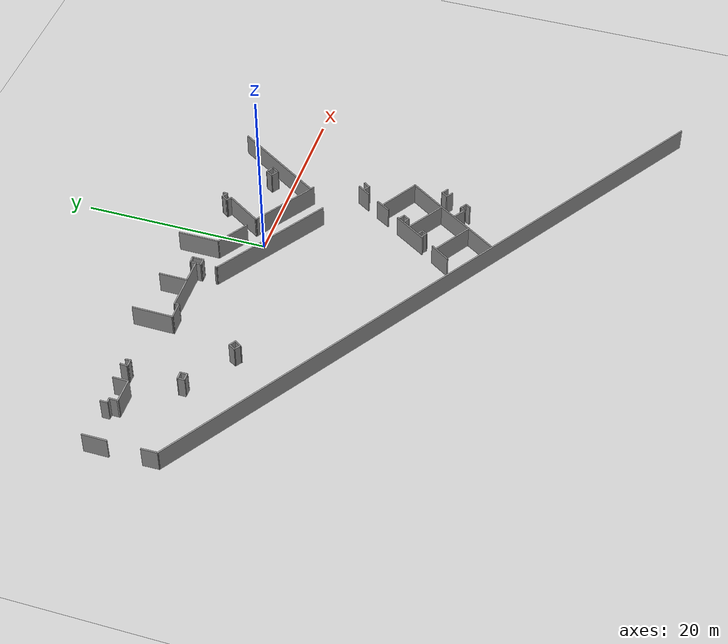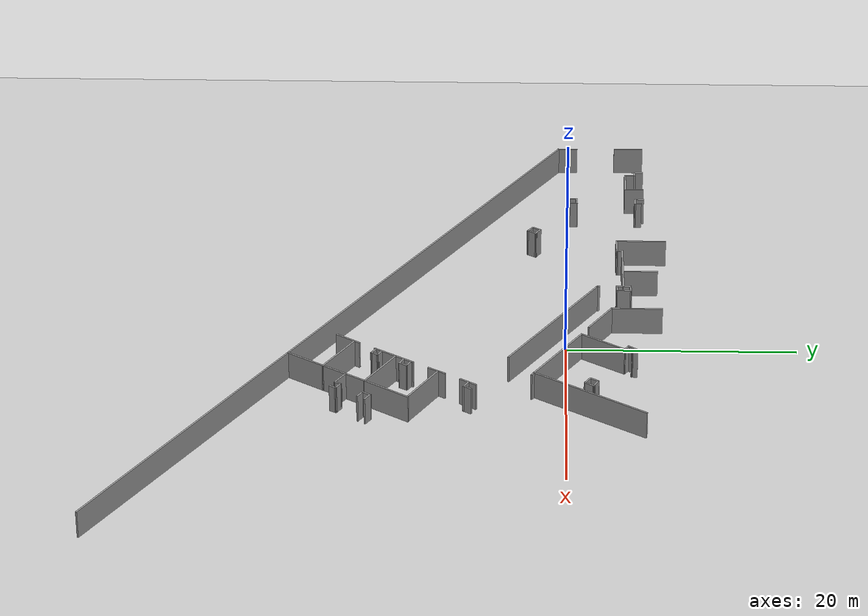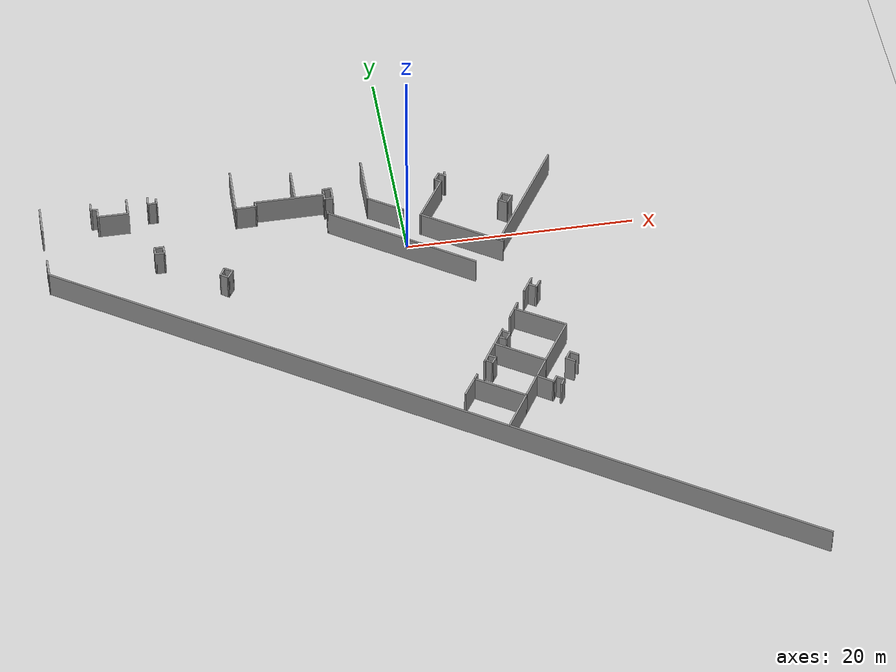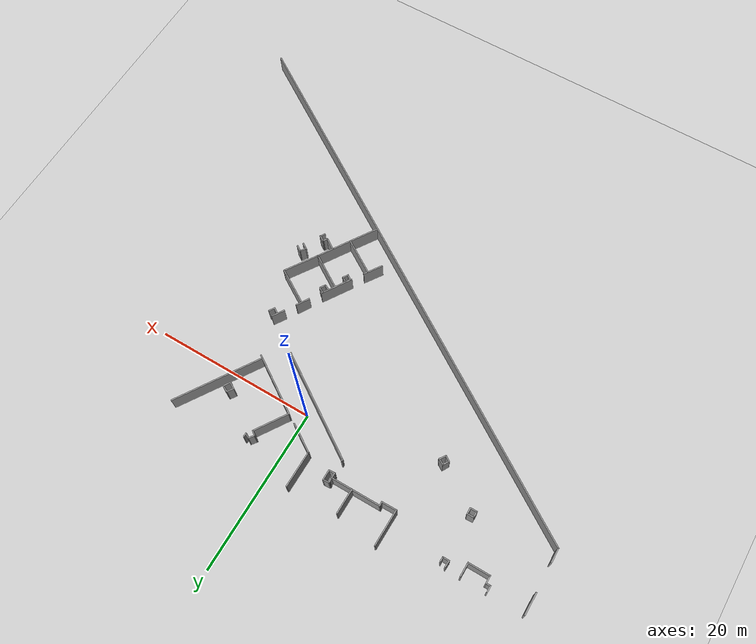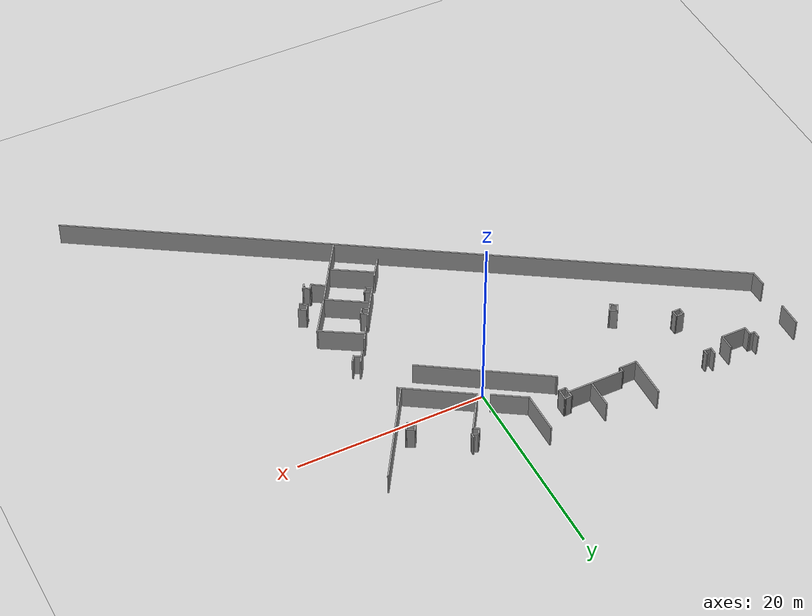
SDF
<sdf version="1.7">
 <world name="default">
  <model name="ground_plane">
   <static>1</static>
   <link name="link">
    <collision name="collision">
     <geometry><plane><normal>0 0 1</normal><size>100 100</size></plane></geometry>
     <surface><friction><ode><mu>100</mu><mu2>50</mu2></ode></friction></surface>
    </collision>
    <visual name="visual">
     <cast_shadows>0</cast_shadows>
     <geometry><plane><normal>0 0 1</normal><size>100 100</size></plane></geometry>
     <material>
      <script><uri>file://media/materials/scripts/gazebo.material</uri><name>Gazebo/Grey</name></script>
     </material>
    </visual>
   </link>
  </model>
  <model name="HopperFloorGround_Full">
   <pose>5.96828 -4.00427 0 0 -0 0</pose>
   <link name="Wall_0">
    <collision name="Wall_0_Collision">
     <geometry><box><size>71.6402 0.15 2.5</size></box></geometry>
     <pose>0 0 1.25 0 -0 0</pose>
    </collision>
    <visual name="Wall_0_Visual">
     <pose>0 0 1.25 0 -0 0</pose>
     <geometry><box><size>71.6402 0.15 2.5</size></box></geometry>
     <material>
      <script><uri>file://media/materials/scripts/gazebo.material</uri><name>Gazebo/Grey</name></script>
      <ambient>1 1 1 1</ambient>
     </material>
     <meta><layer>0</layer></meta>
    </visual>
    <pose>-7.1575 -15.8591 0 0 -0 -0.566616</pose>
   </link>
   <link name="Wall_113">
    <collision name="Wall_113_Collision">
     <geometry><box><size>4.49402 0.15 2.5</size></box></geometry>
     <pose>0 0 1.25 0 -0 0</pose>
    </collision>
    <visual name="Wall_113_Visual">
     <pose>0 0 1.25 0 -0 0</pose>
     <geometry><box><size>4.49402 0.15 2.5</size></box></geometry>
     <material>
      <script><uri>file://media/materials/scripts/gazebo.material</uri><name>Gazebo/Grey</name></script>
      <ambient>1 1 1 1</ambient>
     </material>
     <meta><layer>0</layer></meta>
    </visual>
    <pose>-20.4432 10.711 0 0 -0 -1.58056</pose>
   </link>
   <link name="Wall_114">
    <collision name="Wall_114_Collision">
     <geometry><box><size>1.95508 0.15 2.5</size></box></geometry>
     <pose>0 0 1.25 0 -0 0</pose>
    </collision>
    <visual name="Wall_114_Visual">
     <pose>0 0 1.25 0 -0 0</pose>
     <geometry><box><size>1.95508 0.15 2.5</size></box></geometry>
     <material>
      <script><uri>file://media/materials/scripts/gazebo.material</uri><name>Gazebo/Grey</name></script>
      <ambient>1 1 1 1</ambient>
     </material>
     <meta><layer>0</layer></meta>
    </visual>
    <pose>-19.562 8.5544 0 0 -0 0.016948</pose>
   </link>
   <link name="Wall_115">
    <collision name="Wall_115_Collision">
     <geometry><box><size>0.609872 0.15 2.5</size></box></geometry>
     <pose>0 0 1.25 0 -0 0</pose>
    </collision>
    <visual name="Wall_115_Visual">
     <pose>0 0 1.25 0 -0 0</pose>
     <geometry><box><size>0.609872 0.15 2.5</size></box></geometry>
     <material>
      <script><uri>file://media/materials/scripts/gazebo.material</uri><name>Gazebo/Grey</name></script>
      <ambient>1 1 1 1</ambient>
     </material>
     <meta><layer>0</layer></meta>
    </visual>
    <pose>-18.6749 8.79912 0 0 -0 1.63736</pose>
   </link>
   <link name="Wall_116">
    <collision name="Wall_116_Collision">
     <geometry><box><size>6.23753 0.15 2.5</size></box></geometry>
     <pose>0 0 1.25 0 -0 0</pose>
    </collision>
    <visual name="Wall_116_Visual">
     <pose>0 0 1.25 0 -0 0</pose>
     <geometry><box><size>6.23753 0.15 2.5</size></box></geometry>
     <material>
      <script><uri>file://media/materials/scripts/gazebo.material</uri><name>Gazebo/Grey</name></script>
      <ambient>1 1 1 1</ambient>
     </material>
     <meta><layer>0</layer></meta>
    </visual>
    <pose>-15.6464 9.04384 0 0 -0 0.005025</pose>
   </link>
   <link name="Wall_117">
    <collision name="Wall_117_Collision">
     <geometry><box><size>0.731214 0.15 2.5</size></box></geometry>
     <pose>0 0 1.25 0 -0 0</pose>
    </collision>
    <visual name="Wall_117_Visual">
     <pose>0 0 1.25 0 -0 0</pose>
     <geometry><box><size>0.731214 0.15 2.5</size></box></geometry>
     <material>
      <script><uri>file://media/materials/scripts/gazebo.material</uri><name>Gazebo/Grey</name></script>
      <ambient>1 1 1 1</ambient>
     </material>
     <meta><layer>0</layer></meta>
    </visual>
    <pose>-12.6027 8.76853 0 0 -0 -1.5708</pose>
   </link>
   <link name="Wall_118">
    <collision name="Wall_118_Collision">
     <geometry><box><size>0.85424 0.15 2.5</size></box></geometry>
     <pose>0 0 1.25 0 -0 0</pose>
    </collision>
    <visual name="Wall_118_Visual">
     <pose>0 0 1.25 0 -0 0</pose>
     <geometry><box><size>0.85424 0.15 2.5</size></box></geometry>
     <material>
      <script><uri>file://media/materials/scripts/gazebo.material</uri><name>Gazebo/Grey</name></script>
      <ambient>1 1 1 1</ambient>
     </material>
     <meta><layer>0</layer></meta>
    </visual>
    <pose>-12.2509 8.49322 0 0 -0 0.043451</pose>
   </link>
   <link name="Wall_119">
    <collision name="Wall_119_Collision">
     <geometry><box><size>1.34302 0.15 2.5</size></box></geometry>
     <pose>0 0 1.25 0 -0 0</pose>
    </collision>
    <visual name="Wall_119_Visual">
     <pose>0 0 1.25 0 -0 0</pose>
     <geometry><box><size>1.34302 0.15 2.5</size></box></geometry>
     <material>
      <script><uri>file://media/materials/scripts/gazebo.material</uri><name>Gazebo/Grey</name></script>
      <ambient>1 1 1 1</ambient>
     </material>
     <meta><layer>0</layer></meta>
    </visual>
    <pose>-11.8991 9.10502 0 0 -0 1.5708</pose>
   </link>
   <link name="Wall_120">
    <collision name="Wall_120_Collision">
     <geometry><box><size>0.88671 0.15 2.5</size></box></geometry>
     <pose>0 0 1.25 0 -0 0</pose>
    </collision>
    <visual name="Wall_120_Visual">
     <pose>0 0 1.25 0 -0 0</pose>
     <geometry><box><size>0.88671 0.15 2.5</size></box></geometry>
     <material>
      <script><uri>file://media/materials/scripts/gazebo.material</uri><name>Gazebo/Grey</name></script>
      <ambient>1 1 1 1</ambient>
     </material>
     <meta><layer>0</layer></meta>
    </visual>
    <pose>-12.2662 9.67094 0 0 -0 -3.05845</pose>
   </link>
   <link name="Wall_121">
    <collision name="Wall_121_Collision">
     <geometry><box><size>0.704013 0.15 2.5</size></box></geometry>
     <pose>0 0 1.25 0 -0 0</pose>
    </collision>
    <visual name="Wall_121_Visual">
     <pose>0 0 1.25 0 -0 0</pose>
     <geometry><box><size>0.704013 0.15 2.5</size></box></geometry>
     <material>
      <script><uri>file://media/materials/scripts/gazebo.material</uri><name>Gazebo/Grey</name></script>
      <ambient>1 1 1 1</ambient>
     </material>
     <meta><layer>0</layer></meta>
    </visual>
    <pose>-12.6027 9.36504 0 0 -0 -1.46014</pose>
   </link>
   <link name="Wall_161">
    <collision name="Wall_161_Collision">
     <geometry><box><size>3.11574 0.15 2.5</size></box></geometry>
     <pose>0 0 1.25 0 -0 0</pose>
    </collision>
    <visual name="Wall_161_Visual">
     <pose>0 0 1.25 0 -0 0</pose>
     <geometry><box><size>3.11574 0.15 2.5</size></box></geometry>
     <material>
      <script><uri>file://media/materials/scripts/gazebo.material</uri><name>Gazebo/Grey</name></script>
      <ambient>1 1 1 1</ambient>
     </material>
     <meta><layer>0</layer></meta>
    </visual>
    <pose>-15.1555 10.555 0 0 -0 -1.57593</pose>
   </link>
   <link name="Wall_163">
    <collision name="Wall_163_Collision">
     <geometry><box><size>0.293821 0.15 2.5</size></box></geometry>
     <pose>0 0 1.25 0 -0 0</pose>
    </collision>
    <visual name="Wall_163_Visual">
     <pose>0 0 1.25 0 -0 0</pose>
     <geometry><box><size>0.293821 0.15 2.5</size></box></geometry>
     <material>
      <script><uri>file://media/materials/scripts/gazebo.material</uri><name>Gazebo/Grey</name></script>
      <ambient>1 1 1 1</ambient>
     </material>
     <meta><layer>0</layer></meta>
    </visual>
    <pose>-12.5366 6.82613 0 0 -0 -1.42643</pose>
   </link>
   <link name="Wall_164">
    <collision name="Wall_164_Collision">
     <geometry><box><size>14.1631 0.15 2.5</size></box></geometry>
     <pose>0 0 1.25 0 -0 0</pose>
    </collision>
    <visual name="Wall_164_Visual">
     <pose>0 0 1.25 0 -0 0</pose>
     <geometry><box><size>14.1631 0.15 2.5</size></box></geometry>
     <material>
      <script><uri>file://media/materials/scripts/gazebo.material</uri><name>Gazebo/Grey</name></script>
      <ambient>1 1 1 1</ambient>
     </material>
     <meta><layer>0</layer></meta>
    </visual>
    <pose>-6.67032 2.93967 0 0 -0 -0.575834</pose>
   </link>
   <link name="Wall_168">
    <collision name="Wall_168_Collision">
     <geometry><box><size>1.67737 0.15 2.5</size></box></geometry>
     <pose>0 0 1.25 0 -0 0</pose>
    </collision>
    <visual name="Wall_168_Visual">
     <pose>0 0 1.25 0 -0 0</pose>
     <geometry><box><size>1.67737 0.15 2.5</size></box></geometry>
     <material>
      <script><uri>file://media/materials/scripts/gazebo.material</uri><name>Gazebo/Grey</name></script>
      <ambient>1 1 1 1</ambient>
     </material>
     <meta><layer>0</layer></meta>
    </visual>
    <pose>3.20221 -4.27331 0 0 -0 -2.14213</pose>
   </link>
   <link name="Wall_170">
    <collision name="Wall_170_Collision">
     <geometry><box><size>0.850577 0.15 2.5</size></box></geometry>
     <pose>0 0 1.25 0 -0 0</pose>
    </collision>
    <visual name="Wall_170_Visual">
     <pose>0 0 1.25 0 -0 0</pose>
     <geometry><box><size>0.850577 0.15 2.5</size></box></geometry>
     <material>
      <script><uri>file://media/materials/scripts/gazebo.material</uri><name>Gazebo/Grey</name></script>
      <ambient>1 1 1 1</ambient>
     </material>
     <meta><layer>0</layer></meta>
    </visual>
    <pose>4.09227 -4.31899 0 0 -0 -2.16423</pose>
   </link>
   <link name="Wall_171">
    <collision name="Wall_171_Collision">
     <geometry><box><size>0.905243 0.15 2.5</size></box></geometry>
     <pose>0 0 1.25 0 -0 0</pose>
    </collision>
    <visual name="Wall_171_Visual">
     <pose>0 0 1.25 0 -0 0</pose>
     <geometry><box><size>0.905243 0.15 2.5</size></box></geometry>
     <material>
      <script><uri>file://media/materials/scripts/gazebo.material</uri><name>Gazebo/Grey</name></script>
      <ambient>1 1 1 1</ambient>
     </material>
     <meta><layer>0</layer></meta>
    </visual>
    <pose>3.59044 -4.4109 0 0 -0 2.58813</pose>
   </link>
   <link name="Wall_177">
    <collision name="Wall_177_Collision">
     <geometry><box><size>4.87161 0.15 2.5</size></box></geometry>
     <pose>0 0 1.25 0 -0 0</pose>
    </collision>
    <visual name="Wall_177_Visual">
     <pose>0 0 1.25 0 -0 0</pose>
     <geometry><box><size>4.87161 0.15 2.5</size></box></geometry>
     <material>
      <script><uri>file://media/materials/scripts/gazebo.material</uri><name>Gazebo/Grey</name></script>
      <ambient>1 1 1 1</ambient>
     </material>
     <meta><layer>0</layer></meta>
    </visual>
    <pose>3.60568 -8.06677 0 0 -0 2.59673</pose>
   </link>
   <link name="Wall_179">
    <collision name="Wall_179_Collision">
     <geometry><box><size>1.77632 0.15 2.5</size></box></geometry>
     <pose>0 0 1.25 0 -0 0</pose>
    </collision>
    <visual name="Wall_179_Visual">
     <pose>0 0 1.25 0 -0 0</pose>
     <geometry><box><size>1.77632 0.15 2.5</size></box></geometry>
     <material>
      <script><uri>file://media/materials/scripts/gazebo.material</uri><name>Gazebo/Grey</name></script>
      <ambient>1 1 1 1</ambient>
     </material>
     <meta><layer>0</layer></meta>
    </visual>
    <pose>1.50261 -6.95788 0 0 -0 -2.11444</pose>
   </link>
   <link name="Wall_181">
    <collision name="Wall_181_Collision">
     <geometry><box><size>4.06223 0.15 2.5</size></box></geometry>
     <pose>0 0 1.25 0 -0 0</pose>
    </collision>
    <visual name="Wall_181_Visual">
     <pose>0 0 1.25 0 -0 0</pose>
     <geometry><box><size>4.06223 0.15 2.5</size></box></geometry>
     <material>
      <script><uri>file://media/materials/scripts/gazebo.material</uri><name>Gazebo/Grey</name></script>
      <ambient>1 1 1 1</ambient>
     </material>
     <meta><layer>0</layer></meta>
    </visual>
    <pose>-0.852842 -10.6822 0 0 -0 -2.13603</pose>
   </link>
   <link name="Wall_184">
    <collision name="Wall_184_Collision">
     <geometry><box><size>0.83743 0.15 2.5</size></box></geometry>
     <pose>0 0 1.25 0 -0 0</pose>
    </collision>
    <visual name="Wall_184_Visual">
     <pose>0 0 1.25 0 -0 0</pose>
     <geometry><box><size>0.83743 0.15 2.5</size></box></geometry>
     <material>
      <script><uri>file://media/materials/scripts/gazebo.material</uri><name>Gazebo/Grey</name></script>
      <ambient>1 1 1 1</ambient>
     </material>
     <meta><layer>0</layer></meta>
    </visual>
    <pose>0.439595 -9.35156 0 0 -0 -0.563316</pose>
   </link>
   <link name="Wall_185">
    <collision name="Wall_185_Collision">
     <geometry><box><size>0.871469 0.15 2.5</size></box></geometry>
     <pose>0 0 1.25 0 -0 0</pose>
    </collision>
    <visual name="Wall_185_Visual">
     <pose>0 0 1.25 0 -0 0</pose>
     <geometry><box><size>0.871469 0.15 2.5</size></box></geometry>
     <material>
      <script><uri>file://media/materials/scripts/gazebo.material</uri><name>Gazebo/Grey</name></script>
      <ambient>1 1 1 1</ambient>
     </material>
     <meta><layer>0</layer></meta>
    </visual>
    <pose>0.539013 -9.84101 0 0 -0 -2.1294</pose>
   </link>
   <link name="Wall_186">
    <collision name="Wall_186_Collision">
     <geometry><box><size>0.814062 0.15 2.5</size></box></geometry>
     <pose>0 0 1.25 0 -0 0</pose>
    </collision>
    <visual name="Wall_186_Visual">
     <pose>0 0 1.25 0 -0 0</pose>
     <geometry><box><size>0.814062 0.15 2.5</size></box></geometry>
     <material>
      <script><uri>file://media/materials/scripts/gazebo.material</uri><name>Gazebo/Grey</name></script>
      <ambient>1 1 1 1</ambient>
     </material>
     <meta><layer>0</layer></meta>
    </visual>
    <pose>0.057217 -9.98631 0 0 -0 2.63673</pose>
   </link>
   <link name="Wall_188">
    <collision name="Wall_188_Collision">
     <geometry><box><size>0.777845 0.15 2.5</size></box></geometry>
     <pose>0 0 1.25 0 -0 0</pose>
    </collision>
    <visual name="Wall_188_Visual">
     <pose>0 0 1.25 0 -0 0</pose>
     <geometry><box><size>0.777845 0.15 2.5</size></box></geometry>
     <material>
      <script><uri>file://media/materials/scripts/gazebo.material</uri><name>Gazebo/Grey</name></script>
      <ambient>1 1 1 1</ambient>
     </material>
     <meta><layer>0</layer></meta>
    </visual>
    <pose>-1.51818 -12.4182 0 0 -0 -0.594759</pose>
   </link>
   <link name="Wall_189">
    <collision name="Wall_189_Collision">
     <geometry><box><size>0.790571 0.15 2.5</size></box></geometry>
     <pose>0 0 1.25 0 -0 0</pose>
    </collision>
    <visual name="Wall_189_Visual">
     <pose>0 0 1.25 0 -0 0</pose>
     <geometry><box><size>0.790571 0.15 2.5</size></box></geometry>
     <material>
      <script><uri>file://media/materials/scripts/gazebo.material</uri><name>Gazebo/Grey</name></script>
      <ambient>1 1 1 1</ambient>
     </material>
     <meta><layer>0</layer></meta>
    </visual>
    <pose>-1.08227 -12.3265 0 0 -0 0.989416</pose>
   </link>
   <link name="Wall_190">
    <collision name="Wall_190_Collision">
     <geometry><box><size>0.800717 0.15 2.5</size></box></geometry>
     <pose>0 0 1.25 0 -0 0</pose>
    </collision>
    <visual name="Wall_190_Visual">
     <pose>0 0 1.25 0 -0 0</pose>
     <geometry><box><size>0.800717 0.15 2.5</size></box></geometry>
     <material>
      <script><uri>file://media/materials/scripts/gazebo.material</uri><name>Gazebo/Grey</name></script>
      <ambient>1 1 1 1</ambient>
     </material>
     <meta><layer>0</layer></meta>
    </visual>
    <pose>-1.18934 -11.8982 0 0 -0 2.62536</pose>
   </link>
   <link name="Wall_192">
    <collision name="Wall_192_Collision">
     <geometry><box><size>2.49652 0.15 2.5</size></box></geometry>
     <pose>0 0 1.25 0 -0 0</pose>
    </collision>
    <visual name="Wall_192_Visual">
     <pose>0 0 1.25 0 -0 0</pose>
     <geometry><box><size>2.49652 0.15 2.5</size></box></geometry>
     <material>
      <script><uri>file://media/materials/scripts/gazebo.material</uri><name>Gazebo/Grey</name></script>
      <ambient>1 1 1 1</ambient>
     </material>
     <meta><layer>0</layer></meta>
    </visual>
    <pose>-3.46067 -14.7159 0 0 -0 0.982794</pose>
   </link>
   <link name="Wall_194">
    <collision name="Wall_194_Collision">
     <geometry><box><size>4.81119 0.15 2.5</size></box></geometry>
     <pose>0 0 1.25 0 -0 0</pose>
    </collision>
    <visual name="Wall_194_Visual">
     <pose>0 0 1.25 0 -0 0</pose>
     <geometry><box><size>4.81119 0.15 2.5</size></box></geometry>
     <material>
      <script><uri>file://media/materials/scripts/gazebo.material</uri><name>Gazebo/Grey</name></script>
      <ambient>1 1 1 1</ambient>
     </material>
     <meta><layer>0</layer></meta>
    </visual>
    <pose>-1.07731 -15.393 0 0 -0 -0.556599</pose>
   </link>
   <link name="Wall_195">
    <collision name="Wall_195_Collision">
     <geometry><box><size>4.45886 0.15 2.5</size></box></geometry>
     <pose>0 0 1.25 0 -0 0</pose>
    </collision>
    <visual name="Wall_195_Visual">
     <pose>0 0 1.25 0 -0 0</pose>
     <geometry><box><size>4.45886 0.15 2.5</size></box></geometry>
     <material>
      <script><uri>file://media/materials/scripts/gazebo.material</uri><name>Gazebo/Grey</name></script>
      <ambient>1 1 1 1</ambient>
     </material>
     <meta><layer>0</layer></meta>
    </visual>
    <pose>2.0536 -14.8038 0 0 -0 1.00657</pose>
   </link>
   <link name="Wall_196">
    <collision name="Wall_196_Collision">
     <geometry><box><size>4.73287 0.15 2.5</size></box></geometry>
     <pose>0 0 1.25 0 -0 0</pose>
    </collision>
    <visual name="Wall_196_Visual">
     <pose>0 0 1.25 0 -0 0</pose>
     <geometry><box><size>4.73287 0.15 2.5</size></box></geometry>
     <material>
      <script><uri>file://media/materials/scripts/gazebo.material</uri><name>Gazebo/Grey</name></script>
      <ambient>1 1 1 1</ambient>
     </material>
     <meta><layer>0</layer></meta>
    </visual>
    <pose>1.26208 -11.7696 0 0 -0 2.5834</pose>
   </link>
   <link name="Wall_198">
    <collision name="Wall_198_Collision">
     <geometry><box><size>4.56994 0.15 2.5</size></box></geometry>
     <pose>0 0 1.25 0 -0 0</pose>
    </collision>
    <visual name="Wall_198_Visual">
     <pose>0 0 1.25 0 -0 0</pose>
     <geometry><box><size>4.56994 0.15 2.5</size></box></geometry>
     <material>
      <script><uri>file://media/materials/scripts/gazebo.material</uri><name>Gazebo/Grey</name></script>
      <ambient>1 1 1 1</ambient>
     </material>
     <meta><layer>0</layer></meta>
    </visual>
    <pose>4.41937 -11.1364 0 0 -0 0.989416</pose>
   </link>
   <link name="Wall_204">
    <collision name="Wall_204_Collision">
     <geometry><box><size>0.886657 0.15 2.5</size></box></geometry>
     <pose>0 0 1.25 0 -0 0</pose>
    </collision>
    <visual name="Wall_204_Visual">
     <pose>0 0 1.25 0 -0 0</pose>
     <geometry><box><size>0.886657 0.15 2.5</size></box></geometry>
     <material>
      <script><uri>file://media/materials/scripts/gazebo.material</uri><name>Gazebo/Grey</name></script>
      <ambient>1 1 1 1</ambient>
     </material>
     <meta><layer>0</layer></meta>
    </visual>
    <pose>5.18451 -12.7458 0 0 -0 0.989416</pose>
   </link>
   <link name="Wall_205">
    <collision name="Wall_205_Collision">
     <geometry><box><size>0.901419 0.15 2.5</size></box></geometry>
     <pose>0 0 1.25 0 -0 0</pose>
    </collision>
    <visual name="Wall_205_Visual">
     <pose>0 0 1.25 0 -0 0</pose>
     <geometry><box><size>0.901419 0.15 2.5</size></box></geometry>
     <material>
      <script><uri>file://media/materials/scripts/gazebo.material</uri><name>Gazebo/Grey</name></script>
      <ambient>1 1 1 1</ambient>
     </material>
     <meta><layer>0</layer></meta>
    </visual>
    <pose>5.7034 -12.6403 0 0 -0 -0.568525</pose>
   </link>
   <link name="Wall_207">
    <collision name="Wall_207_Collision">
     <geometry><box><size>0.901419 0.15 2.5</size></box></geometry>
     <pose>0 0 1.25 0 -0 0</pose>
    </collision>
    <visual name="Wall_207_Visual">
     <pose>0 0 1.25 0 -0 0</pose>
     <geometry><box><size>0.901419 0.15 2.5</size></box></geometry>
     <material>
      <script><uri>file://media/materials/scripts/gazebo.material</uri><name>Gazebo/Grey</name></script>
      <ambient>1 1 1 1</ambient>
     </material>
     <meta><layer>0</layer></meta>
    </visual>
    <pose>5.28125 -13.2735 0 0 -0 2.57307</pose>
   </link>
   <link name="Wall_209">
    <collision name="Wall_209_Collision">
     <geometry><box><size>1.66238 0.15 2.5</size></box></geometry>
     <pose>0 0 1.25 0 -0 0</pose>
    </collision>
    <visual name="Wall_209_Visual">
     <pose>0 0 1.25 0 -0 0</pose>
     <geometry><box><size>1.66238 0.15 2.5</size></box></geometry>
     <material>
      <script><uri>file://media/materials/scripts/gazebo.material</uri><name>Gazebo/Grey</name></script>
      <ambient>1 1 1 1</ambient>
     </material>
     <meta><layer>0</layer></meta>
    </visual>
    <pose>2.81874 -15.0676 0 0 -0 -0.578325</pose>
   </link>
   <link name="Wall_210">
    <collision name="Wall_210_Collision">
     <geometry><box><size>0.72617 0.15 2.5</size></box></geometry>
     <pose>0 0 1.25 0 -0 0</pose>
    </collision>
    <visual name="Wall_210_Visual">
     <pose>0 0 1.25 0 -0 0</pose>
     <geometry><box><size>0.72617 0.15 2.5</size></box></geometry>
     <material>
      <script><uri>file://media/materials/scripts/gazebo.material</uri><name>Gazebo/Grey</name></script>
      <ambient>1 1 1 1</ambient>
     </material>
     <meta><layer>0</layer></meta>
    </visual>
    <pose>3.60147 -15.2347 0 0 -0 1.02514</pose>
   </link>
   <link name="Wall_211">
    <collision name="Wall_211_Collision">
     <geometry><box><size>0.877146 0.15 2.5</size></box></geometry>
     <pose>0 0 1.25 0 -0 0</pose>
    </collision>
    <visual name="Wall_211_Visual">
     <pose>0 0 1.25 0 -0 0</pose>
     <geometry><box><size>0.877146 0.15 2.5</size></box></geometry>
     <material>
      <script><uri>file://media/materials/scripts/gazebo.material</uri><name>Gazebo/Grey</name></script>
      <ambient>1 1 1 1</ambient>
     </material>
     <meta><layer>0</layer></meta>
    </visual>
    <pose>4.05879 -15.182 0 0 -0 -0.561163</pose>
   </link>
   <link name="Wall_212">
    <collision name="Wall_212_Collision">
     <geometry><box><size>0.711209 0.15 2.5</size></box></geometry>
     <pose>0 0 1.25 0 -0 0</pose>
    </collision>
    <visual name="Wall_212_Visual">
     <pose>0 0 1.25 0 -0 0</pose>
     <geometry><box><size>0.711209 0.15 2.5</size></box></geometry>
     <material>
      <script><uri>file://media/materials/scripts/gazebo.material</uri><name>Gazebo/Grey</name></script>
      <ambient>1 1 1 1</ambient>
     </material>
     <meta><layer>0</layer></meta>
    </visual>
    <pose>4.2171 -15.6129 0 0 -0 -2.13272</pose>
   </link>
   <link name="Wall_337">
    <collision name="Wall_337_Collision">
     <geometry><box><size>4.50338 0.15 2.5</size></box></geometry>
     <pose>0 0 1.25 0 -0 0</pose>
    </collision>
    <visual name="Wall_337_Visual">
     <pose>0 0 1.25 0 -0 0</pose>
     <geometry><box><size>4.50338 0.15 2.5</size></box></geometry>
     <material>
      <script><uri>file://media/materials/scripts/gazebo.material</uri><name>Gazebo/Grey</name></script>
      <ambient>1 1 1 1</ambient>
     </material>
     <meta><layer>0</layer></meta>
    </visual>
    <pose>-8.86715 10.1578 0 0 -0 1.56612</pose>
   </link>
   <link name="Wall_339">
    <collision name="Wall_339_Collision">
     <geometry><box><size>3.8633 0.15 2.5</size></box></geometry>
     <pose>0 0 1.25 0 -0 0</pose>
    </collision>
    <visual name="Wall_339_Visual">
     <pose>0 0 1.25 0 -0 0</pose>
     <geometry><box><size>3.8633 0.15 2.5</size></box></geometry>
     <material>
      <script><uri>file://media/materials/scripts/gazebo.material</uri><name>Gazebo/Grey</name></script>
      <ambient>1 1 1 1</ambient>
     </material>
     <meta><layer>0</layer></meta>
    </visual>
    <pose>-7.31093 6.98431 0 0 -0 -0.566729</pose>
   </link>
   <link name="Wall_343">
    <collision name="Wall_343_Collision">
     <geometry><box><size>0.53651 0.15 2.5</size></box></geometry>
     <pose>0 0 1.25 0 -0 0</pose>
    </collision>
    <visual name="Wall_343_Visual">
     <pose>0 0 1.25 0 -0 0</pose>
     <geometry><box><size>0.53651 0.15 2.5</size></box></geometry>
     <material>
      <script><uri>file://media/materials/scripts/gazebo.material</uri><name>Gazebo/Grey</name></script>
      <ambient>1 1 1 1</ambient>
     </material>
     <meta><layer>0</layer></meta>
    </visual>
    <pose>-1.72687 9.8628 0 0 -0 -1.62338</pose>
   </link>
   <link name="Wall_344">
    <collision name="Wall_344_Collision">
     <geometry><box><size>0.75 0.15 2.5</size></box></geometry>
     <pose>0 0 1.25 0 -0 0</pose>
    </collision>
    <visual name="Wall_344_Visual">
     <pose>0 0 1.25 0 -0 0</pose>
     <geometry><box><size>0.75 0.15 2.5</size></box></geometry>
     <material>
      <script><uri>file://media/materials/scripts/gazebo.material</uri><name>Gazebo/Grey</name></script>
      <ambient>1 1 1 1</ambient>
     </material>
     <meta><layer>0</layer></meta>
    </visual>
    <pose>-1.99685 9.81954 0 0 -0 2.61799</pose>
   </link>
   <link name="Wall_345">
    <collision name="Wall_345_Collision">
     <geometry><box><size>0.896135 0.15 2.5</size></box></geometry>
     <pose>0 0 1.25 0 -0 0</pose>
    </collision>
    <visual name="Wall_345_Visual">
     <pose>0 0 1.25 0 -0 0</pose>
     <geometry><box><size>0.896135 0.15 2.5</size></box></geometry>
     <material>
      <script><uri>file://media/materials/scripts/gazebo.material</uri><name>Gazebo/Grey</name></script>
      <ambient>1 1 1 1</ambient>
     </material>
     <meta><layer>0</layer></meta>
    </visual>
    <pose>-2.47491 9.66697 0 0 -0 -2.19568</pose>
   </link>
   <link name="Wall_346">
    <collision name="Wall_346_Collision">
     <geometry><box><size>0.748295 0.15 2.5</size></box></geometry>
     <pose>0 0 1.25 0 -0 0</pose>
    </collision>
    <visual name="Wall_346_Visual">
     <pose>0 0 1.25 0 -0 0</pose>
     <geometry><box><size>0.748295 0.15 2.5</size></box></geometry>
     <material>
      <script><uri>file://media/materials/scripts/gazebo.material</uri><name>Gazebo/Grey</name></script>
      <ambient>1 1 1 1</ambient>
     </material>
     <meta><layer>0</layer></meta>
    </visual>
    <pose>-2.44904 9.19149 0 0 -0 -0.616297</pose>
   </link>
   <link name="Wall_347">
    <collision name="Wall_347_Collision">
     <geometry><box><size>4.5343 0.15 2.5</size></box></geometry>
     <pose>0 0 1.25 0 -0 0</pose>
    </collision>
    <visual name="Wall_347_Visual">
     <pose>0 0 1.25 0 -0 0</pose>
     <geometry><box><size>4.5343 0.15 2.5</size></box></geometry>
     <material>
      <script><uri>file://media/materials/scripts/gazebo.material</uri><name>Gazebo/Grey</name></script>
      <ambient>1 1 1 1</ambient>
     </material>
     <meta><layer>0</layer></meta>
    </visual>
    <pose>-3.39497 7.17757 0 0 -0 -2.14464</pose>
   </link>
   <link name="Wall_352">
    <collision name="Wall_352_Collision">
     <geometry><box><size>11.2837 0.15 2.5</size></box></geometry>
     <pose>0 0 1.25 0 -0 0</pose>
    </collision>
    <visual name="Wall_352_Visual">
     <pose>0 0 1.25 0 -0 0</pose>
     <geometry><box><size>11.2837 0.15 2.5</size></box></geometry>
     <material>
      <script><uri>file://media/materials/scripts/gazebo.material</uri><name>Gazebo/Grey</name></script>
      <ambient>1 1 1 1</ambient>
     </material>
     <meta><layer>0</layer></meta>
    </visual>
    <pose>4.66072 5.9977 0 0 -0 -2.14005</pose>
   </link>
   <link name="Wall_354">
    <collision name="Wall_354_Collision">
     <geometry><box><size>7.94811 0.15 2.5</size></box></geometry>
     <pose>0 0 1.25 0 -0 0</pose>
    </collision>
    <visual name="Wall_354_Visual">
     <pose>0 0 1.25 0 -0 0</pose>
     <geometry><box><size>7.94811 0.15 2.5</size></box></geometry>
     <material>
      <script><uri>file://media/materials/scripts/gazebo.material</uri><name>Gazebo/Grey</name></script>
      <ambient>1 1 1 1</ambient>
     </material>
     <meta><layer>0</layer></meta>
    </visual>
    <pose>-1.30985 3.22092 0 0 -0 -0.573532</pose>
   </link>
   <link name="Wall_356">
    <collision name="Wall_356_Collision">
     <geometry><box><size>0.945707 0.15 2.5</size></box></geometry>
     <pose>0 0 1.25 0 -0 0</pose>
    </collision>
    <visual name="Wall_356_Visual">
     <pose>0 0 1.25 0 -0 0</pose>
     <geometry><box><size>0.945707 0.15 2.5</size></box></geometry>
     <material>
      <script><uri>file://media/materials/scripts/gazebo.material</uri><name>Gazebo/Grey</name></script>
      <ambient>1 1 1 1</ambient>
     </material>
     <meta><layer>0</layer></meta>
    </visual>
    <pose>2.6468 6.3842 0 0 -0 -2.13753</pose>
   </link>
   <link name="Wall_357">
    <collision name="Wall_357_Collision">
     <geometry><box><size>0.973815 0.15 2.5</size></box></geometry>
     <pose>0 0 1.25 0 -0 0</pose>
    </collision>
    <visual name="Wall_357_Visual">
     <pose>0 0 1.25 0 -0 0</pose>
     <geometry><box><size>0.973815 0.15 2.5</size></box></geometry>
     <material>
      <script><uri>file://media/materials/scripts/gazebo.material</uri><name>Gazebo/Grey</name></script>
      <ambient>1 1 1 1</ambient>
     </material>
     <meta><layer>0</layer></meta>
    </visual>
    <pose>2.77902 5.82478 0 0 -0 -0.574305</pose>
   </link>
   <link name="Wall_358">
    <collision name="Wall_358_Collision">
     <geometry><box><size>1.03016 0.15 2.5</size></box></geometry>
     <pose>0 0 1.25 0 -0 0</pose>
    </collision>
    <visual name="Wall_358_Visual">
     <pose>0 0 1.25 0 -0 0</pose>
     <geometry><box><size>1.03016 0.15 2.5</size></box></geometry>
     <material>
      <script><uri>file://media/materials/scripts/gazebo.material</uri><name>Gazebo/Grey</name></script>
      <ambient>1 1 1 1</ambient>
     </material>
     <meta><layer>0</layer></meta>
    </visual>
    <pose>3.36896 5.96718 0 0 -0 0.982794</pose>
   </link>
   <link name="Wall_359">
    <collision name="Wall_359_Collision">
     <geometry><box><size>0.996117 0.15 2.5</size></box></geometry>
     <pose>0 0 1.25 0 -0 0</pose>
    </collision>
    <visual name="Wall_359_Visual">
     <pose>0 0 1.25 0 -0 0</pose>
     <geometry><box><size>0.996117 0.15 2.5</size></box></geometry>
     <material>
      <script><uri>file://media/materials/scripts/gazebo.material</uri><name>Gazebo/Grey</name></script>
      <ambient>1 1 1 1</ambient>
     </material>
     <meta><layer>0</layer></meta>
    </visual>
    <pose>3.23673 6.5266 0 0 -0 2.66719</pose>
   </link>
   <link name="Wall_45">
    <collision name="Wall_45_Collision">
     <geometry><box><size>1.81221 0.15 2.5</size></box></geometry>
     <pose>0 0 1.25 0 -0 0</pose>
    </collision>
    <visual name="Wall_45_Visual">
     <pose>0 0 1.25 0 -0 0</pose>
     <geometry><box><size>1.81221 0.15 2.5</size></box></geometry>
     <material>
      <script><uri>file://media/materials/scripts/gazebo.material</uri><name>Gazebo/Grey</name></script>
      <ambient>1 1 1 1</ambient>
     </material>
     <meta><layer>0</layer></meta>
    </visual>
    <pose>-37.3348 4.15908 0 0 -0 1.59289</pose>
   </link>
   <link name="Wall_47">
    <collision name="Wall_47_Collision">
     <geometry><box><size>0.75 0.15 2.5</size></box></geometry>
     <pose>0 0 1.25 0 -0 0</pose>
    </collision>
    <visual name="Wall_47_Visual">
     <pose>0 0 1.25 0 -0 0</pose>
     <geometry><box><size>0.75 0.15 2.5</size></box></geometry>
     <material>
      <script><uri>file://media/materials/scripts/gazebo.material</uri><name>Gazebo/Grey</name></script>
      <ambient>1 1 1 1</ambient>
     </material>
     <meta><layer>0</layer></meta>
    </visual>
    <pose>-28.0004 4.60612 0 0 -0 -1.5708</pose>
   </link>
   <link name="Wall_48">
    <collision name="Wall_48_Collision">
     <geometry><box><size>0.934429 0.15 2.5</size></box></geometry>
     <pose>0 0 1.25 0 -0 0</pose>
    </collision>
    <visual name="Wall_48_Visual">
     <pose>0 0 1.25 0 -0 0</pose>
     <geometry><box><size>0.934429 0.15 2.5</size></box></geometry>
     <material>
      <script><uri>file://media/materials/scripts/gazebo.material</uri><name>Gazebo/Grey</name></script>
      <ambient>1 1 1 1</ambient>
     </material>
     <meta><layer>0</layer></meta>
    </visual>
    <pose>-27.6081 4.30612 0 0 -0 0</pose>
   </link>
   <link name="Wall_49">
    <collision name="Wall_49_Collision">
     <geometry><box><size>0.854262 0.15 2.5</size></box></geometry>
     <pose>0 0 1.25 0 -0 0</pose>
    </collision>
    <visual name="Wall_49_Visual">
     <pose>0 0 1.25 0 -0 0</pose>
     <geometry><box><size>0.854262 0.15 2.5</size></box></geometry>
     <material>
      <script><uri>file://media/materials/scripts/gazebo.material</uri><name>Gazebo/Grey</name></script>
      <ambient>1 1 1 1</ambient>
     </material>
     <meta><layer>0</layer></meta>
    </visual>
    <pose>-27.226 4.65811 0 0 -0 1.59936</pose>
   </link>
   <link name="Wall_50">
    <collision name="Wall_50_Collision">
     <geometry><box><size>0.91458 0.15 2.5</size></box></geometry>
     <pose>0 0 1.25 0 -0 0</pose>
    </collision>
    <visual name="Wall_50_Visual">
     <pose>0 0 1.25 0 -0 0</pose>
     <geometry><box><size>0.91458 0.15 2.5</size></box></geometry>
     <material>
      <script><uri>file://media/materials/scripts/gazebo.material</uri><name>Gazebo/Grey</name></script>
      <ambient>1 1 1 1</ambient>
     </material>
     <meta><layer>0</layer></meta>
    </visual>
    <pose>-27.6182 5.00004 0 0 -0 -3.11528</pose>
   </link>
   <link name="Wall_52">
    <collision name="Wall_52_Collision">
     <geometry><box><size>0.915902 0.15 2.5</size></box></geometry>
     <pose>0 0 1.25 0 -0 0</pose>
    </collision>
    <visual name="Wall_52_Visual">
     <pose>0 0 1.25 0 -0 0</pose>
     <geometry><box><size>0.915902 0.15 2.5</size></box></geometry>
     <material>
      <script><uri>file://media/materials/scripts/gazebo.material</uri><name>Gazebo/Grey</name></script>
      <ambient>1 1 1 1</ambient>
     </material>
     <meta><layer>0</layer></meta>
    </visual>
    <pose>-22.5194 1.33937 0 0 -0 -2.0932</pose>
   </link>
   <link name="Wall_53">
    <collision name="Wall_53_Collision">
     <geometry><box><size>0.858557 0.15 2.5</size></box></geometry>
     <pose>0 0 1.25 0 -0 0</pose>
    </collision>
    <visual name="Wall_53_Visual">
     <pose>0 0 1.25 0 -0 0</pose>
     <geometry><box><size>0.858557 0.15 2.5</size></box></geometry>
     <material>
      <script><uri>file://media/materials/scripts/gazebo.material</uri><name>Gazebo/Grey</name></script>
      <ambient>1 1 1 1</ambient>
     </material>
     <meta><layer>0</layer></meta>
    </visual>
    <pose>-22.4188 0.806363 0 0 -0 -0.603749</pose>
   </link>
   <link name="Wall_54">
    <collision name="Wall_54_Collision">
     <geometry><box><size>0.975637 0.15 2.5</size></box></geometry>
     <pose>0 0 1.25 0 -0 0</pose>
    </collision>
    <visual name="Wall_54_Visual">
     <pose>0 0 1.25 0 -0 0</pose>
     <geometry><box><size>0.975637 0.15 2.5</size></box></geometry>
     <material>
      <script><uri>file://media/materials/scripts/gazebo.material</uri><name>Gazebo/Grey</name></script>
      <ambient>1 1 1 1</ambient>
     </material>
     <meta><layer>0</layer></meta>
    </visual>
    <pose>-21.8959 0.947158 0 0 -0 0.976037</pose>
   </link>
   <link name="Wall_55">
    <collision name="Wall_55_Collision">
     <geometry><box><size>0.898538 0.15 2.5</size></box></geometry>
     <pose>0 0 1.25 0 -0 0</pose>
    </collision>
    <visual name="Wall_55_Visual">
     <pose>0 0 1.25 0 -0 0</pose>
     <geometry><box><size>0.898538 0.15 2.5</size></box></geometry>
     <material>
      <script><uri>file://media/materials/scripts/gazebo.material</uri><name>Gazebo/Grey</name></script>
      <ambient>1 1 1 1</ambient>
     </material>
     <meta><layer>0</layer></meta>
    </visual>
    <pose>-21.9864 1.48017 0 0 -0 2.60578</pose>
   </link>
   <link name="Wall_57">
    <collision name="Wall_57_Collision">
     <geometry><box><size>2.65108 0.15 2.5</size></box></geometry>
     <pose>0 0 1.25 0 -0 0</pose>
    </collision>
    <visual name="Wall_57_Visual">
     <pose>0 0 1.25 0 -0 0</pose>
     <geometry><box><size>2.65108 0.15 2.5</size></box></geometry>
     <material>
      <script><uri>file://media/materials/scripts/gazebo.material</uri><name>Gazebo/Grey</name></script>
      <ambient>1 1 1 1</ambient>
     </material>
     <meta><layer>0</layer></meta>
    </visual>
    <pose>-37.405 9.83262 0 0 -0 1.5708</pose>
   </link>
   <link name="Wall_591">
    <collision name="Wall_591_Collision">
     <geometry><box><size>3.81994 0.15 2.5</size></box></geometry>
     <pose>0 0 1.25 0 -0 0</pose>
    </collision>
    <visual name="Wall_591_Visual">
     <pose>0 0 1.25 0 -0 0</pose>
     <geometry><box><size>3.81994 0.15 2.5</size></box></geometry>
     <material>
      <script><uri>file://media/materials/scripts/gazebo.material</uri><name>Gazebo/Grey</name></script>
      <ambient>1 1 1 1</ambient>
     </material>
     <meta><layer>0</layer></meta>
    </visual>
    <pose>-0.089737 -18.1685 0 0 -0 -2.14146</pose>
   </link>
   <link name="Wall_63">
    <collision name="Wall_63_Collision">
     <geometry><box><size>0.832112 0.15 2.5</size></box></geometry>
     <pose>0 0 1.25 0 -0 0</pose>
    </collision>
    <visual name="Wall_63_Visual">
     <pose>0 0 1.25 0 -0 0</pose>
     <geometry><box><size>0.832112 0.15 2.5</size></box></geometry>
     <material>
      <script><uri>file://media/materials/scripts/gazebo.material</uri><name>Gazebo/Grey</name></script>
      <ambient>1 1 1 1</ambient>
     </material>
     <meta><layer>0</layer></meta>
    </visual>
    <pose>-32.9625 10.7071 0 0 -0 -1.5708</pose>
   </link>
   <link name="Wall_64">
    <collision name="Wall_64_Collision">
     <geometry><box><size>0.674702 0.15 2.5</size></box></geometry>
     <pose>0 0 1.25 0 -0 0</pose>
    </collision>
    <visual name="Wall_64_Visual">
     <pose>0 0 1.25 0 -0 0</pose>
     <geometry><box><size>0.674702 0.15 2.5</size></box></geometry>
     <material>
      <script><uri>file://media/materials/scripts/gazebo.material</uri><name>Gazebo/Grey</name></script>
      <ambient>1 1 1 1</ambient>
     </material>
     <meta><layer>0</layer></meta>
    </visual>
    <pose>-32.7001 10.3661 0 0 -0 0</pose>
   </link>
   <link name="Wall_65">
    <collision name="Wall_65_Collision">
     <geometry><box><size>1.04217 0.15 2.5</size></box></geometry>
     <pose>0 0 1.25 0 -0 0</pose>
    </collision>
    <visual name="Wall_65_Visual">
     <pose>0 0 1.25 0 -0 0</pose>
     <geometry><box><size>1.04217 0.15 2.5</size></box></geometry>
     <material>
      <script><uri>file://media/materials/scripts/gazebo.material</uri><name>Gazebo/Grey</name></script>
      <ambient>1 1 1 1</ambient>
     </material>
     <meta><layer>0</layer></meta>
    </visual>
    <pose>-32.4378 9.92007 0 0 -0 -1.5708</pose>
   </link>
   <link name="Wall_66">
    <collision name="Wall_66_Collision">
     <geometry><box><size>2.791 0.15 2.5</size></box></geometry>
     <pose>0 0 1.25 0 -0 0</pose>
    </collision>
    <visual name="Wall_66_Visual">
     <pose>0 0 1.25 0 -0 0</pose>
     <geometry><box><size>2.791 0.15 2.5</size></box></geometry>
     <material>
      <script><uri>file://media/materials/scripts/gazebo.material</uri><name>Gazebo/Grey</name></script>
      <ambient>1 1 1 1</ambient>
     </material>
     <meta><layer>0</layer></meta>
    </visual>
    <pose>-31.1173 9.47408 0 0 -0 0</pose>
   </link>
   <link name="Wall_67">
    <collision name="Wall_67_Collision">
     <geometry><box><size>1.7416 0.15 2.5</size></box></geometry>
     <pose>0 0 1.25 0 -0 0</pose>
    </collision>
    <visual name="Wall_67_Visual">
     <pose>0 0 1.25 0 -0 0</pose>
     <geometry><box><size>1.7416 0.15 2.5</size></box></geometry>
     <material>
      <script><uri>file://media/materials/scripts/gazebo.material</uri><name>Gazebo/Grey</name></script>
      <ambient>1 1 1 1</ambient>
     </material>
     <meta><layer>0</layer></meta>
    </visual>
    <pose>-29.7968 10.2699 0 0 -0 1.5708</pose>
   </link>
   <link name="Wall_69">
    <collision name="Wall_69_Collision">
     <geometry><box><size>0.885415 0.15 2.5</size></box></geometry>
     <pose>0 0 1.25 0 -0 0</pose>
    </collision>
    <visual name="Wall_69_Visual">
     <pose>0 0 1.25 0 -0 0</pose>
     <geometry><box><size>0.885415 0.15 2.5</size></box></geometry>
     <material>
      <script><uri>file://media/materials/scripts/gazebo.material</uri><name>Gazebo/Grey</name></script>
      <ambient>1 1 1 1</ambient>
     </material>
     <meta><layer>0</layer></meta>
    </visual>
    <pose>-27.9603 10.6809 0 0 -0 -1.61838</pose>
   </link>
   <link name="Wall_70">
    <collision name="Wall_70_Collision">
     <geometry><box><size>0.919563 0.15 2.5</size></box></geometry>
     <pose>0 0 1.25 0 -0 0</pose>
    </collision>
    <visual name="Wall_70_Visual">
     <pose>0 0 1.25 0 -0 0</pose>
     <geometry><box><size>0.919563 0.15 2.5</size></box></geometry>
     <material>
      <script><uri>file://media/materials/scripts/gazebo.material</uri><name>Gazebo/Grey</name></script>
      <ambient>1 1 1 1</ambient>
     </material>
     <meta><layer>0</layer></meta>
    </visual>
    <pose>-27.593 10.3136 0 0 -0 0</pose>
   </link>
   <link name="Wall_71">
    <collision name="Wall_71_Collision">
     <geometry><box><size>0.639722 0.15 2.5</size></box></geometry>
     <pose>0 0 1.25 0 -0 0</pose>
    </collision>
    <visual name="Wall_71_Visual">
     <pose>0 0 1.25 0 -0 0</pose>
     <geometry><box><size>0.639722 0.15 2.5</size></box></geometry>
     <material>
      <script><uri>file://media/materials/scripts/gazebo.material</uri><name>Gazebo/Grey</name></script>
      <ambient>1 1 1 1</ambient>
     </material>
     <meta><layer>0</layer></meta>
    </visual>
    <pose>-27.217 10.5585 0 0 -0 1.6065</pose>
   </link>
   <static>1</static>
  </model>
 </world>
</sdf>
